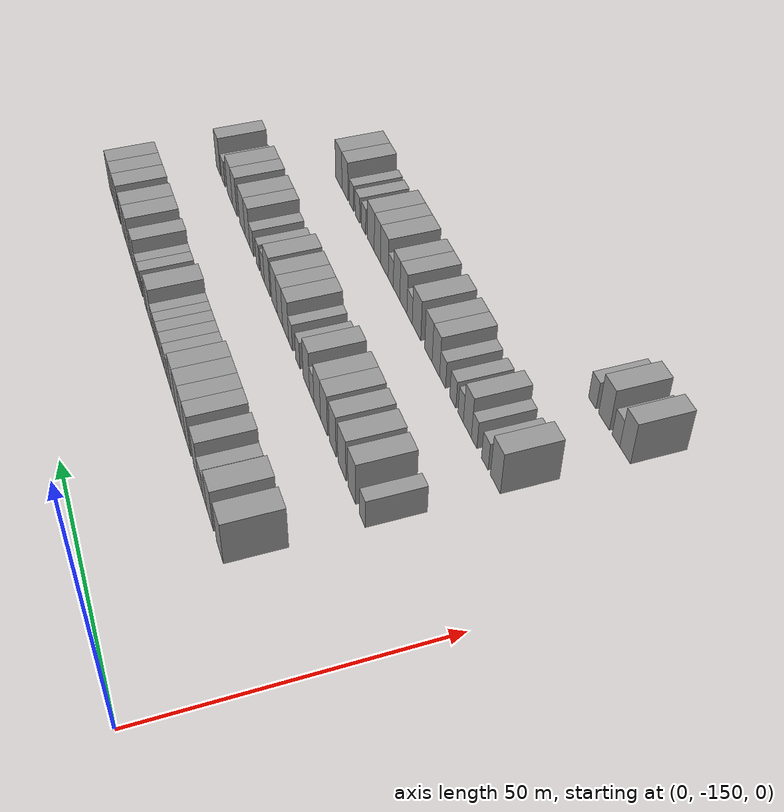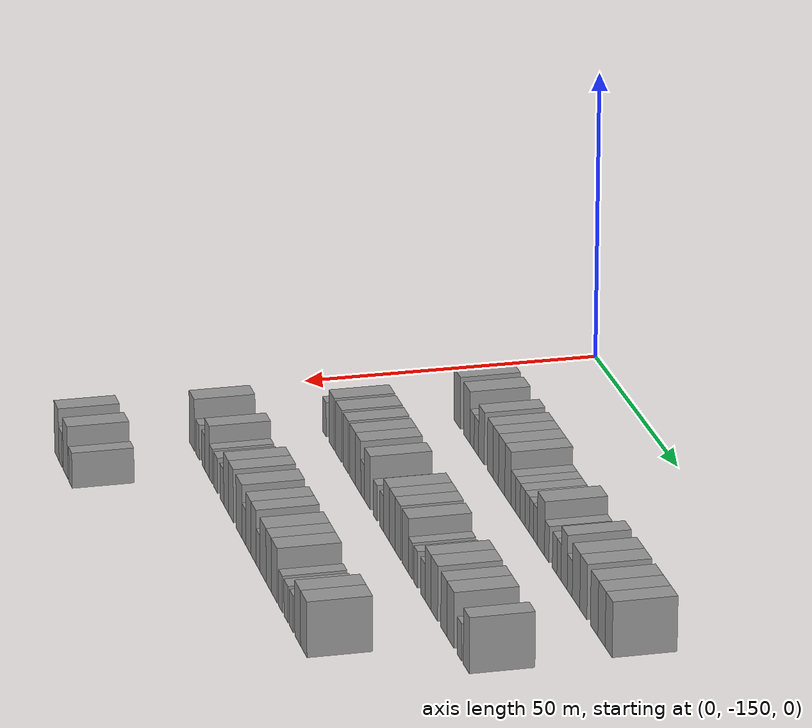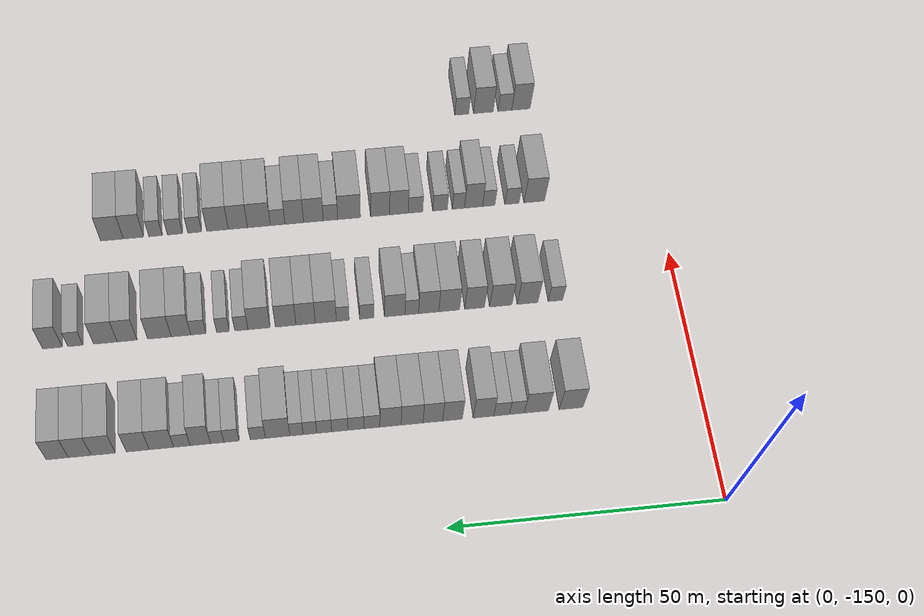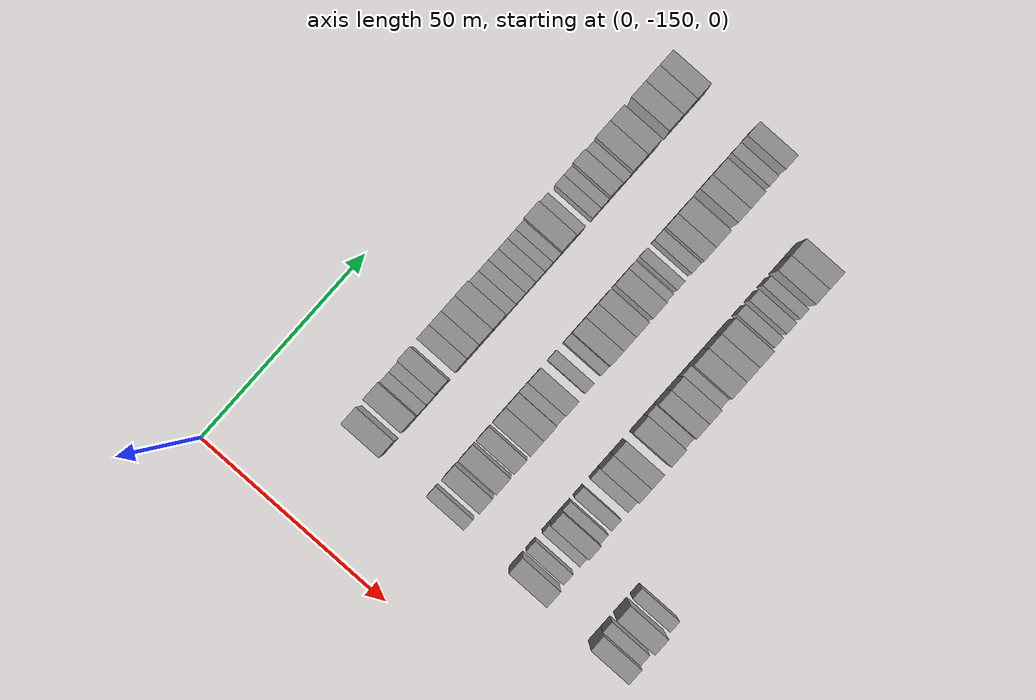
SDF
<sdf version="1.6">
 <world name="default">
  <model name="building_63">
   <static>1</static>
   <pose>25.0000 -125.6364 0 0.000000 0.000000 0.000000</pose>
   <link name="link">
    <pose>0 0 4.50 0 0 0</pose>
    <collision name="collision"><geometry><box><size>10.0000 4.4079 9.0000</size></box></geometry></collision>
    <visual name="visual">
     <cast_shadows>0</cast_shadows>
     <geometry><box><size>10.0000 4.4079 9.0000</size></box></geometry>
     <material>
      <script>
       <uri>model://grey_wall/materials/scripts</uri>
       <uri>model://grey_wall/materials/textures</uri>
       <name>vrc/grey_wall</name>
      </script>
     </material>
    </visual>
   </link>
  </model>
  <model name="building_64">
   <static>1</static>
   <pose>25.0000 -119.1926 0 0.000000 0.000000 0.000000</pose>
   <link name="link">
    <pose>0 0 4.50 0 0 0</pose>
    <collision name="collision"><geometry><box><size>10.0000 4.4797 9.0000</size></box></geometry></collision>
    <visual name="visual">
     <cast_shadows>0</cast_shadows>
     <geometry><box><size>10.0000 4.4797 9.0000</size></box></geometry>
     <material>
      <script>
       <uri>model://grey_wall/materials/scripts</uri>
       <uri>model://grey_wall/materials/textures</uri>
       <name>vrc/grey_wall</name>
      </script>
     </material>
    </visual>
   </link>
  </model>
  <model name="building_65">
   <static>1</static>
   <pose>25.0000 -115.5849 0 0.000000 0.000000 0.000000</pose>
   <link name="link">
    <pose>0 0 3.00 0 0 0</pose>
    <collision name="collision"><geometry><box><size>10.0000 2.7357 6.0000</size></box></geometry></collision>
    <visual name="visual">
     <cast_shadows>0</cast_shadows>
     <geometry><box><size>10.0000 2.7357 6.0000</size></box></geometry>
     <material>
      <script>
       <uri>model://grey_wall/materials/scripts</uri>
       <uri>model://grey_wall/materials/textures</uri>
       <name>vrc/grey_wall</name>
      </script>
     </material>
    </visual>
   </link>
  </model>
  <model name="building_66">
   <static>1</static>
   <pose>25.0000 -112.7701 0 0.000000 0.000000 0.000000</pose>
   <link name="link">
    <pose>0 0 3.00 0 0 0</pose>
    <collision name="collision"><geometry><box><size>10.0000 2.8938 6.0000</size></box></geometry></collision>
    <visual name="visual">
     <cast_shadows>0</cast_shadows>
     <geometry><box><size>10.0000 2.8938 6.0000</size></box></geometry>
     <material>
      <script>
       <uri>model://grey_wall/materials/scripts</uri>
       <uri>model://grey_wall/materials/textures</uri>
       <name>vrc/grey_wall</name>
      </script>
     </material>
    </visual>
   </link>
  </model>
  <model name="building_67">
   <static>1</static>
   <pose>25.0000 -109.4229 0 0.000000 0.000000 0.000000</pose>
   <link name="link">
    <pose>0 0 4.50 0 0 0</pose>
    <collision name="collision"><geometry><box><size>10.0000 3.8006 9.0000</size></box></geometry></collision>
    <visual name="visual">
     <cast_shadows>0</cast_shadows>
     <geometry><box><size>10.0000 3.8006 9.0000</size></box></geometry>
     <material>
      <script>
       <uri>model://grey_wall/materials/scripts</uri>
       <uri>model://grey_wall/materials/textures</uri>
       <name>vrc/grey_wall</name>
      </script>
     </material>
    </visual>
   </link>
  </model>
  <model name="building_68">
   <static>1</static>
   <pose>25.0000 -103.7081 0 0.000000 0.000000 0.000000</pose>
   <link name="link">
    <pose>0 0 4.50 0 0 0</pose>
    <collision name="collision"><geometry><box><size>10.0000 3.6289 9.0000</size></box></geometry></collision>
    <visual name="visual">
     <cast_shadows>0</cast_shadows>
     <geometry><box><size>10.0000 3.6289 9.0000</size></box></geometry>
     <material>
      <script>
       <uri>model://grey_wall/materials/scripts</uri>
       <uri>model://grey_wall/materials/textures</uri>
       <name>vrc/grey_wall</name>
      </script>
     </material>
    </visual>
   </link>
  </model>
  <model name="building_69">
   <static>1</static>
   <pose>25.0000 -100.0918 0 0.000000 0.000000 0.000000</pose>
   <link name="link">
    <pose>0 0 4.50 0 0 0</pose>
    <collision name="collision"><geometry><box><size>10.0000 3.6039 9.0000</size></box></geometry></collision>
    <visual name="visual">
     <cast_shadows>0</cast_shadows>
     <geometry><box><size>10.0000 3.6039 9.0000</size></box></geometry>
     <material>
      <script>
       <uri>model://grey_wall/materials/scripts</uri>
       <uri>model://grey_wall/materials/textures</uri>
       <name>vrc/grey_wall</name>
      </script>
     </material>
    </visual>
   </link>
  </model>
  <model name="building_70">
   <static>1</static>
   <pose>25.0000 -96.2771 0 0.000000 0.000000 0.000000</pose>
   <link name="link">
    <pose>0 0 4.50 0 0 0</pose>
    <collision name="collision"><geometry><box><size>10.0000 4.0254 9.0000</size></box></geometry></collision>
    <visual name="visual">
     <cast_shadows>0</cast_shadows>
     <geometry><box><size>10.0000 4.0254 9.0000</size></box></geometry>
     <material>
      <script>
       <uri>model://grey_wall/materials/scripts</uri>
       <uri>model://grey_wall/materials/textures</uri>
       <name>vrc/grey_wall</name>
      </script>
     </material>
    </visual>
   </link>
  </model>
  <model name="building_71">
   <static>1</static>
   <pose>25.0000 -92.3193 0 0.000000 0.000000 0.000000</pose>
   <link name="link">
    <pose>0 0 4.50 0 0 0</pose>
    <collision name="collision"><geometry><box><size>10.0000 3.8903 9.0000</size></box></geometry></collision>
    <visual name="visual">
     <cast_shadows>0</cast_shadows>
     <geometry><box><size>10.0000 3.8903 9.0000</size></box></geometry>
     <material>
      <script>
       <uri>model://grey_wall/materials/scripts</uri>
       <uri>model://grey_wall/materials/textures</uri>
       <name>vrc/grey_wall</name>
      </script>
     </material>
    </visual>
   </link>
  </model>
  <model name="building_72">
   <static>1</static>
   <pose>25.0000 -88.9104 0 0.000000 0.000000 0.000000</pose>
   <link name="link">
    <pose>0 0 3.00 0 0 0</pose>
    <collision name="collision"><geometry><box><size>10.0000 2.9274 6.0000</size></box></geometry></collision>
    <visual name="visual">
     <cast_shadows>0</cast_shadows>
     <geometry><box><size>10.0000 2.9274 6.0000</size></box></geometry>
     <material>
      <script>
       <uri>model://grey_wall/materials/scripts</uri>
       <uri>model://grey_wall/materials/textures</uri>
       <name>vrc/grey_wall</name>
      </script>
     </material>
    </visual>
   </link>
  </model>
  <model name="building_73">
   <static>1</static>
   <pose>25.0000 -86.0013 0 0.000000 0.000000 0.000000</pose>
   <link name="link">
    <pose>0 0 3.00 0 0 0</pose>
    <collision name="collision"><geometry><box><size>10.0000 2.8908 6.0000</size></box></geometry></collision>
    <visual name="visual">
     <cast_shadows>0</cast_shadows>
     <geometry><box><size>10.0000 2.8908 6.0000</size></box></geometry>
     <material>
      <script>
       <uri>model://grey_wall/materials/scripts</uri>
       <uri>model://grey_wall/materials/textures</uri>
       <name>vrc/grey_wall</name>
      </script>
     </material>
    </visual>
   </link>
  </model>
  <model name="building_74">
   <static>1</static>
   <pose>25.0000 -83.0703 0 0.000000 0.000000 0.000000</pose>
   <link name="link">
    <pose>0 0 3.00 0 0 0</pose>
    <collision name="collision"><geometry><box><size>10.0000 2.9712 6.0000</size></box></geometry></collision>
    <visual name="visual">
     <cast_shadows>0</cast_shadows>
     <geometry><box><size>10.0000 2.9712 6.0000</size></box></geometry>
     <material>
      <script>
       <uri>model://grey_wall/materials/scripts</uri>
       <uri>model://grey_wall/materials/textures</uri>
       <name>vrc/grey_wall</name>
      </script>
     </material>
    </visual>
   </link>
  </model>
  <model name="building_75">
   <static>1</static>
   <pose>25.0000 -80.2121 0 0.000000 0.000000 0.000000</pose>
   <link name="link">
    <pose>0 0 3.00 0 0 0</pose>
    <collision name="collision"><geometry><box><size>10.0000 2.7452 6.0000</size></box></geometry></collision>
    <visual name="visual">
     <cast_shadows>0</cast_shadows>
     <geometry><box><size>10.0000 2.7452 6.0000</size></box></geometry>
     <material>
      <script>
       <uri>model://grey_wall/materials/scripts</uri>
       <uri>model://grey_wall/materials/textures</uri>
       <name>vrc/grey_wall</name>
      </script>
     </material>
    </visual>
   </link>
  </model>
  <model name="building_76">
   <static>1</static>
   <pose>25.0000 -77.6186 0 0.000000 0.000000 0.000000</pose>
   <link name="link">
    <pose>0 0 3.00 0 0 0</pose>
    <collision name="collision"><geometry><box><size>10.0000 2.4418 6.0000</size></box></geometry></collision>
    <visual name="visual">
     <cast_shadows>0</cast_shadows>
     <geometry><box><size>10.0000 2.4418 6.0000</size></box></geometry>
     <material>
      <script>
       <uri>model://grey_wall/materials/scripts</uri>
       <uri>model://grey_wall/materials/textures</uri>
       <name>vrc/grey_wall</name>
      </script>
     </material>
    </visual>
   </link>
  </model>
  <model name="building_77">
   <static>1</static>
   <pose>25.0000 -75.1793 0 0.000000 0.000000 0.000000</pose>
   <link name="link">
    <pose>0 0 3.00 0 0 0</pose>
    <collision name="collision"><geometry><box><size>10.0000 2.4368 6.0000</size></box></geometry></collision>
    <visual name="visual">
     <cast_shadows>0</cast_shadows>
     <geometry><box><size>10.0000 2.4368 6.0000</size></box></geometry>
     <material>
      <script>
       <uri>model://grey_wall/materials/scripts</uri>
       <uri>model://grey_wall/materials/textures</uri>
       <name>vrc/grey_wall</name>
      </script>
     </material>
    </visual>
   </link>
  </model>
  <model name="building_78">
   <static>1</static>
   <pose>25.0000 -71.7405 0 0.000000 0.000000 0.000000</pose>
   <link name="link">
    <pose>0 0 4.50 0 0 0</pose>
    <collision name="collision"><geometry><box><size>10.0000 4.4407 9.0000</size></box></geometry></collision>
    <visual name="visual">
     <cast_shadows>0</cast_shadows>
     <geometry><box><size>10.0000 4.4407 9.0000</size></box></geometry>
     <material>
      <script>
       <uri>model://grey_wall/materials/scripts</uri>
       <uri>model://grey_wall/materials/textures</uri>
       <name>vrc/grey_wall</name>
      </script>
     </material>
    </visual>
   </link>
  </model>
  <model name="building_79">
   <static>1</static>
   <pose>25.0000 -68.1407 0 0.000000 0.000000 0.000000</pose>
   <link name="link">
    <pose>0 0 3.00 0 0 0</pose>
    <collision name="collision"><geometry><box><size>10.0000 2.7589 6.0000</size></box></geometry></collision>
    <visual name="visual">
     <cast_shadows>0</cast_shadows>
     <geometry><box><size>10.0000 2.7589 6.0000</size></box></geometry>
     <material>
      <script>
       <uri>model://grey_wall/materials/scripts</uri>
       <uri>model://grey_wall/materials/textures</uri>
       <name>vrc/grey_wall</name>
      </script>
     </material>
    </visual>
   </link>
  </model>
  <model name="building_80">
   <static>1</static>
   <pose>25.0000 -63.3926 0 0.000000 0.000000 0.000000</pose>
   <link name="link">
    <pose>0 0 3.00 0 0 0</pose>
    <collision name="collision"><geometry><box><size>10.0000 2.7373 6.0000</size></box></geometry></collision>
    <visual name="visual">
     <cast_shadows>0</cast_shadows>
     <geometry><box><size>10.0000 2.7373 6.0000</size></box></geometry>
     <material>
      <script>
       <uri>model://grey_wall/materials/scripts</uri>
       <uri>model://grey_wall/materials/textures</uri>
       <name>vrc/grey_wall</name>
      </script>
     </material>
    </visual>
   </link>
  </model>
  <model name="building_81">
   <static>1</static>
   <pose>25.0000 -60.8012 0 0.000000 0.000000 0.000000</pose>
   <link name="link">
    <pose>0 0 3.00 0 0 0</pose>
    <collision name="collision"><geometry><box><size>10.0000 2.4455 6.0000</size></box></geometry></collision>
    <visual name="visual">
     <cast_shadows>0</cast_shadows>
     <geometry><box><size>10.0000 2.4455 6.0000</size></box></geometry>
     <material>
      <script>
       <uri>model://grey_wall/materials/scripts</uri>
       <uri>model://grey_wall/materials/textures</uri>
       <name>vrc/grey_wall</name>
      </script>
     </material>
    </visual>
   </link>
  </model>
  <model name="building_82">
   <static>1</static>
   <pose>25.0000 -57.7466 0 0.000000 0.000000 0.000000</pose>
   <link name="link">
    <pose>0 0 4.50 0 0 0</pose>
    <collision name="collision"><geometry><box><size>10.0000 3.6637 9.0000</size></box></geometry></collision>
    <visual name="visual">
     <cast_shadows>0</cast_shadows>
     <geometry><box><size>10.0000 3.6637 9.0000</size></box></geometry>
     <material>
      <script>
       <uri>model://grey_wall/materials/scripts</uri>
       <uri>model://grey_wall/materials/textures</uri>
       <name>vrc/grey_wall</name>
      </script>
     </material>
    </visual>
   </link>
  </model>
  <model name="building_83">
   <static>1</static>
   <pose>25.0000 -54.4215 0 0.000000 0.000000 0.000000</pose>
   <link name="link">
    <pose>0 0 3.00 0 0 0</pose>
    <collision name="collision"><geometry><box><size>10.0000 2.9864 6.0000</size></box></geometry></collision>
    <visual name="visual">
     <cast_shadows>0</cast_shadows>
     <geometry><box><size>10.0000 2.9864 6.0000</size></box></geometry>
     <material>
      <script>
       <uri>model://grey_wall/materials/scripts</uri>
       <uri>model://grey_wall/materials/textures</uri>
       <name>vrc/grey_wall</name>
      </script>
     </material>
    </visual>
   </link>
  </model>
  <model name="building_84">
   <static>1</static>
   <pose>25.0000 -50.7210 0 0.000000 0.000000 0.000000</pose>
   <link name="link">
    <pose>0 0 4.50 0 0 0</pose>
    <collision name="collision"><geometry><box><size>10.0000 4.4145 9.0000</size></box></geometry></collision>
    <visual name="visual">
     <cast_shadows>0</cast_shadows>
     <geometry><box><size>10.0000 4.4145 9.0000</size></box></geometry>
     <material>
      <script>
       <uri>model://grey_wall/materials/scripts</uri>
       <uri>model://grey_wall/materials/textures</uri>
       <name>vrc/grey_wall</name>
      </script>
     </material>
    </visual>
   </link>
  </model>
  <model name="building_85">
   <static>1</static>
   <pose>25.0000 -46.4467 0 0.000000 0.000000 0.000000</pose>
   <link name="link">
    <pose>0 0 4.50 0 0 0</pose>
    <collision name="collision"><geometry><box><size>10.0000 4.1342 9.0000</size></box></geometry></collision>
    <visual name="visual">
     <cast_shadows>0</cast_shadows>
     <geometry><box><size>10.0000 4.1342 9.0000</size></box></geometry>
     <material>
      <script>
       <uri>model://grey_wall/materials/scripts</uri>
       <uri>model://grey_wall/materials/textures</uri>
       <name>vrc/grey_wall</name>
      </script>
     </material>
    </visual>
   </link>
  </model>
  <model name="building_86">
   <static>1</static>
   <pose>25.0000 -40.2250 0 0.000000 0.000000 0.000000</pose>
   <link name="link">
    <pose>0 0 4.50 0 0 0</pose>
    <collision name="collision"><geometry><box><size>10.0000 4.3090 9.0000</size></box></geometry></collision>
    <visual name="visual">
     <cast_shadows>0</cast_shadows>
     <geometry><box><size>10.0000 4.3090 9.0000</size></box></geometry>
     <material>
      <script>
       <uri>model://grey_wall/materials/scripts</uri>
       <uri>model://grey_wall/materials/textures</uri>
       <name>vrc/grey_wall</name>
      </script>
     </material>
    </visual>
   </link>
  </model>
  <model name="building_87">
   <static>1</static>
   <pose>25.0000 -36.0208 0 0.000000 0.000000 0.000000</pose>
   <link name="link">
    <pose>0 0 4.50 0 0 0</pose>
    <collision name="collision"><geometry><box><size>10.0000 4.0994 9.0000</size></box></geometry></collision>
    <visual name="visual">
     <cast_shadows>0</cast_shadows>
     <geometry><box><size>10.0000 4.0994 9.0000</size></box></geometry>
     <material>
      <script>
       <uri>model://grey_wall/materials/scripts</uri>
       <uri>model://grey_wall/materials/textures</uri>
       <name>vrc/grey_wall</name>
      </script>
     </material>
    </visual>
   </link>
  </model>
  <model name="building_88">
   <static>1</static>
   <pose>25.0000 -31.9930 0 0.000000 0.000000 0.000000</pose>
   <link name="link">
    <pose>0 0 4.50 0 0 0</pose>
    <collision name="collision"><geometry><box><size>10.0000 3.9563 9.0000</size></box></geometry></collision>
    <visual name="visual">
     <cast_shadows>0</cast_shadows>
     <geometry><box><size>10.0000 3.9563 9.0000</size></box></geometry>
     <material>
      <script>
       <uri>model://grey_wall/materials/scripts</uri>
       <uri>model://grey_wall/materials/textures</uri>
       <name>vrc/grey_wall</name>
      </script>
     </material>
    </visual>
   </link>
  </model>
  <model name="building_255">
   <static>1</static>
   <pose>47.0000 -126.4017 0 0.000000 0.000000 0.000000</pose>
   <link name="link">
    <pose>0 0 3.00 0 0 0</pose>
    <collision name="collision"><geometry><box><size>10.0000 2.7861 6.0000</size></box></geometry></collision>
    <visual name="visual">
     <cast_shadows>0</cast_shadows>
     <geometry><box><size>10.0000 2.7861 6.0000</size></box></geometry>
     <material>
      <script>
       <uri>model://grey_wall/materials/scripts</uri>
       <uri>model://grey_wall/materials/textures</uri>
       <name>vrc/grey_wall</name>
      </script>
     </material>
    </visual>
   </link>
  </model>
  <model name="building_256">
   <static>1</static>
   <pose>47.0000 -121.0189 0 0.000000 0.000000 0.000000</pose>
   <link name="link">
    <pose>0 0 4.50 0 0 0</pose>
    <collision name="collision"><geometry><box><size>10.0000 3.9794 9.0000</size></box></geometry></collision>
    <visual name="visual">
     <cast_shadows>0</cast_shadows>
     <geometry><box><size>10.0000 3.9794 9.0000</size></box></geometry>
     <material>
      <script>
       <uri>model://grey_wall/materials/scripts</uri>
       <uri>model://grey_wall/materials/textures</uri>
       <name>vrc/grey_wall</name>
      </script>
     </material>
    </visual>
   </link>
  </model>
  <model name="building_257">
   <static>1</static>
   <pose>47.0000 -115.8772 0 0.000000 0.000000 0.000000</pose>
   <link name="link">
    <pose>0 0 4.50 0 0 0</pose>
    <collision name="collision"><geometry><box><size>10.0000 4.3039 9.0000</size></box></geometry></collision>
    <visual name="visual">
     <cast_shadows>0</cast_shadows>
     <geometry><box><size>10.0000 4.3039 9.0000</size></box></geometry>
     <material>
      <script>
       <uri>model://grey_wall/materials/scripts</uri>
       <uri>model://grey_wall/materials/textures</uri>
       <name>vrc/grey_wall</name>
      </script>
     </material>
    </visual>
   </link>
  </model>
  <model name="building_258">
   <static>1</static>
   <pose>47.0000 -110.8382 0 0.000000 0.000000 0.000000</pose>
   <link name="link">
    <pose>0 0 4.50 0 0 0</pose>
    <collision name="collision"><geometry><box><size>10.0000 3.7742 9.0000</size></box></geometry></collision>
    <visual name="visual">
     <cast_shadows>0</cast_shadows>
     <geometry><box><size>10.0000 3.7742 9.0000</size></box></geometry>
     <material>
      <script>
       <uri>model://grey_wall/materials/scripts</uri>
       <uri>model://grey_wall/materials/textures</uri>
       <name>vrc/grey_wall</name>
      </script>
     </material>
    </visual>
   </link>
  </model>
  <model name="building_259">
   <static>1</static>
   <pose>47.0000 -105.9641 0 0.000000 0.000000 0.000000</pose>
   <link name="link">
    <pose>0 0 4.50 0 0 0</pose>
    <collision name="collision"><geometry><box><size>10.0000 3.9741 9.0000</size></box></geometry></collision>
    <visual name="visual">
     <cast_shadows>0</cast_shadows>
     <geometry><box><size>10.0000 3.9741 9.0000</size></box></geometry>
     <material>
      <script>
       <uri>model://grey_wall/materials/scripts</uri>
       <uri>model://grey_wall/materials/textures</uri>
       <name>vrc/grey_wall</name>
      </script>
     </material>
    </visual>
   </link>
  </model>
  <model name="building_260">
   <static>1</static>
   <pose>47.0000 -102.0428 0 0.000000 0.000000 0.000000</pose>
   <link name="link">
    <pose>0 0 4.50 0 0 0</pose>
    <collision name="collision"><geometry><box><size>10.0000 3.8685 9.0000</size></box></geometry></collision>
    <visual name="visual">
     <cast_shadows>0</cast_shadows>
     <geometry><box><size>10.0000 3.8685 9.0000</size></box></geometry>
     <material>
      <script>
       <uri>model://grey_wall/materials/scripts</uri>
       <uri>model://grey_wall/materials/textures</uri>
       <name>vrc/grey_wall</name>
      </script>
     </material>
    </visual>
   </link>
  </model>
  <model name="building_261">
   <static>1</static>
   <pose>47.0000 -98.8056 0 0.000000 0.000000 0.000000</pose>
   <link name="link">
    <pose>0 0 3.00 0 0 0</pose>
    <collision name="collision"><geometry><box><size>10.0000 2.6057 6.0000</size></box></geometry></collision>
    <visual name="visual">
     <cast_shadows>0</cast_shadows>
     <geometry><box><size>10.0000 2.6057 6.0000</size></box></geometry>
     <material>
      <script>
       <uri>model://grey_wall/materials/scripts</uri>
       <uri>model://grey_wall/materials/textures</uri>
       <name>vrc/grey_wall</name>
      </script>
     </material>
    </visual>
   </link>
  </model>
  <model name="building_262">
   <static>1</static>
   <pose>47.0000 -95.5559 0 0.000000 0.000000 0.000000</pose>
   <link name="link">
    <pose>0 0 4.50 0 0 0</pose>
    <collision name="collision"><geometry><box><size>10.0000 3.8938 9.0000</size></box></geometry></collision>
    <visual name="visual">
     <cast_shadows>0</cast_shadows>
     <geometry><box><size>10.0000 3.8938 9.0000</size></box></geometry>
     <material>
      <script>
       <uri>model://grey_wall/materials/scripts</uri>
       <uri>model://grey_wall/materials/textures</uri>
       <name>vrc/grey_wall</name>
      </script>
     </material>
    </visual>
   </link>
  </model>
  <model name="building_263">
   <static>1</static>
   <pose>47.0000 -90.2427 0 0.000000 0.000000 0.000000</pose>
   <link name="link">
    <pose>0 0 3.00 0 0 0</pose>
    <collision name="collision"><geometry><box><size>10.0000 2.7325 6.0000</size></box></geometry></collision>
    <visual name="visual">
     <cast_shadows>0</cast_shadows>
     <geometry><box><size>10.0000 2.7325 6.0000</size></box></geometry>
     <material>
      <script>
       <uri>model://grey_wall/materials/scripts</uri>
       <uri>model://grey_wall/materials/textures</uri>
       <name>vrc/grey_wall</name>
      </script>
     </material>
    </visual>
   </link>
  </model>
  <model name="building_264">
   <static>1</static>
   <pose>47.0000 -85.6535 0 0.000000 0.000000 0.000000</pose>
   <link name="link">
    <pose>0 0 3.00 0 0 0</pose>
    <collision name="collision"><geometry><box><size>10.0000 2.4460 6.0000</size></box></geometry></collision>
    <visual name="visual">
     <cast_shadows>0</cast_shadows>
     <geometry><box><size>10.0000 2.4460 6.0000</size></box></geometry>
     <material>
      <script>
       <uri>model://grey_wall/materials/scripts</uri>
       <uri>model://grey_wall/materials/textures</uri>
       <name>vrc/grey_wall</name>
      </script>
     </material>
    </visual>
   </link>
  </model>
  <model name="building_265">
   <static>1</static>
   <pose>47.0000 -82.4280 0 0.000000 0.000000 0.000000</pose>
   <link name="link">
    <pose>0 0 4.50 0 0 0</pose>
    <collision name="collision"><geometry><box><size>10.0000 4.0050 9.0000</size></box></geometry></collision>
    <visual name="visual">
     <cast_shadows>0</cast_shadows>
     <geometry><box><size>10.0000 4.0050 9.0000</size></box></geometry>
     <material>
      <script>
       <uri>model://grey_wall/materials/scripts</uri>
       <uri>model://grey_wall/materials/textures</uri>
       <name>vrc/grey_wall</name>
      </script>
     </material>
    </visual>
   </link>
  </model>
  <model name="building_266">
   <static>1</static>
   <pose>47.0000 -78.6016 0 0.000000 0.000000 0.000000</pose>
   <link name="link">
    <pose>0 0 4.50 0 0 0</pose>
    <collision name="collision"><geometry><box><size>10.0000 3.6480 9.0000</size></box></geometry></collision>
    <visual name="visual">
     <cast_shadows>0</cast_shadows>
     <geometry><box><size>10.0000 3.6480 9.0000</size></box></geometry>
     <material>
      <script>
       <uri>model://grey_wall/materials/scripts</uri>
       <uri>model://grey_wall/materials/textures</uri>
       <name>vrc/grey_wall</name>
      </script>
     </material>
    </visual>
   </link>
  </model>
  <model name="building_267">
   <static>1</static>
   <pose>47.0000 -74.8322 0 0.000000 0.000000 0.000000</pose>
   <link name="link">
    <pose>0 0 4.50 0 0 0</pose>
    <collision name="collision"><geometry><box><size>10.0000 3.8908 9.0000</size></box></geometry></collision>
    <visual name="visual">
     <cast_shadows>0</cast_shadows>
     <geometry><box><size>10.0000 3.8908 9.0000</size></box></geometry>
     <material>
      <script>
       <uri>model://grey_wall/materials/scripts</uri>
       <uri>model://grey_wall/materials/textures</uri>
       <name>vrc/grey_wall</name>
      </script>
     </material>
    </visual>
   </link>
  </model>
  <model name="building_268">
   <static>1</static>
   <pose>47.0000 -69.8015 0 0.000000 0.000000 0.000000</pose>
   <link name="link">
    <pose>0 0 4.50 0 0 0</pose>
    <collision name="collision"><geometry><box><size>10.0000 4.1706 9.0000</size></box></geometry></collision>
    <visual name="visual">
     <cast_shadows>0</cast_shadows>
     <geometry><box><size>10.0000 4.1706 9.0000</size></box></geometry>
     <material>
      <script>
       <uri>model://grey_wall/materials/scripts</uri>
       <uri>model://grey_wall/materials/textures</uri>
       <name>vrc/grey_wall</name>
      </script>
     </material>
    </visual>
   </link>
  </model>
  <model name="building_269">
   <static>1</static>
   <pose>47.0000 -66.4611 0 0.000000 0.000000 0.000000</pose>
   <link name="link">
    <pose>0 0 3.00 0 0 0</pose>
    <collision name="collision"><geometry><box><size>10.0000 2.5102 6.0000</size></box></geometry></collision>
    <visual name="visual">
     <cast_shadows>0</cast_shadows>
     <geometry><box><size>10.0000 2.5102 6.0000</size></box></geometry>
     <material>
      <script>
       <uri>model://grey_wall/materials/scripts</uri>
       <uri>model://grey_wall/materials/textures</uri>
       <name>vrc/grey_wall</name>
      </script>
     </material>
    </visual>
   </link>
  </model>
  <model name="building_270">
   <static>1</static>
   <pose>47.0000 -63.0001 0 0.000000 0.000000 0.000000</pose>
   <link name="link">
    <pose>0 0 3.00 0 0 0</pose>
    <collision name="collision"><geometry><box><size>10.0000 2.4117 6.0000</size></box></geometry></collision>
    <visual name="visual">
     <cast_shadows>0</cast_shadows>
     <geometry><box><size>10.0000 2.4117 6.0000</size></box></geometry>
     <material>
      <script>
       <uri>model://grey_wall/materials/scripts</uri>
       <uri>model://grey_wall/materials/textures</uri>
       <name>vrc/grey_wall</name>
      </script>
     </material>
    </visual>
   </link>
  </model>
  <model name="building_271">
   <static>1</static>
   <pose>47.0000 -58.3613 0 0.000000 0.000000 0.000000</pose>
   <link name="link">
    <pose>0 0 3.00 0 0 0</pose>
    <collision name="collision"><geometry><box><size>10.0000 2.8659 6.0000</size></box></geometry></collision>
    <visual name="visual">
     <cast_shadows>0</cast_shadows>
     <geometry><box><size>10.0000 2.8659 6.0000</size></box></geometry>
     <material>
      <script>
       <uri>model://grey_wall/materials/scripts</uri>
       <uri>model://grey_wall/materials/textures</uri>
       <name>vrc/grey_wall</name>
      </script>
     </material>
    </visual>
   </link>
  </model>
  <model name="building_272">
   <static>1</static>
   <pose>47.0000 -55.0954 0 0.000000 0.000000 0.000000</pose>
   <link name="link">
    <pose>0 0 4.50 0 0 0</pose>
    <collision name="collision"><geometry><box><size>10.0000 3.6658 9.0000</size></box></geometry></collision>
    <visual name="visual">
     <cast_shadows>0</cast_shadows>
     <geometry><box><size>10.0000 3.6658 9.0000</size></box></geometry>
     <material>
      <script>
       <uri>model://grey_wall/materials/scripts</uri>
       <uri>model://grey_wall/materials/textures</uri>
       <name>vrc/grey_wall</name>
      </script>
     </material>
    </visual>
   </link>
  </model>
  <model name="building_273">
   <static>1</static>
   <pose>47.0000 -51.0389 0 0.000000 0.000000 0.000000</pose>
   <link name="link">
    <pose>0 0 4.50 0 0 0</pose>
    <collision name="collision"><geometry><box><size>10.0000 4.4472 9.0000</size></box></geometry></collision>
    <visual name="visual">
     <cast_shadows>0</cast_shadows>
     <geometry><box><size>10.0000 4.4472 9.0000</size></box></geometry>
     <material>
      <script>
       <uri>model://grey_wall/materials/scripts</uri>
       <uri>model://grey_wall/materials/textures</uri>
       <name>vrc/grey_wall</name>
      </script>
     </material>
    </visual>
   </link>
  </model>
  <model name="building_274">
   <static>1</static>
   <pose>47.0000 -44.9595 0 0.000000 0.000000 0.000000</pose>
   <link name="link">
    <pose>0 0 4.50 0 0 0</pose>
    <collision name="collision"><geometry><box><size>10.0000 3.7117 9.0000</size></box></geometry></collision>
    <visual name="visual">
     <cast_shadows>0</cast_shadows>
     <geometry><box><size>10.0000 3.7117 9.0000</size></box></geometry>
     <material>
      <script>
       <uri>model://grey_wall/materials/scripts</uri>
       <uri>model://grey_wall/materials/textures</uri>
       <name>vrc/grey_wall</name>
      </script>
     </material>
    </visual>
   </link>
  </model>
  <model name="building_275">
   <static>1</static>
   <pose>47.0000 -40.9039 0 0.000000 0.000000 0.000000</pose>
   <link name="link">
    <pose>0 0 4.50 0 0 0</pose>
    <collision name="collision"><geometry><box><size>10.0000 4.3994 9.0000</size></box></geometry></collision>
    <visual name="visual">
     <cast_shadows>0</cast_shadows>
     <geometry><box><size>10.0000 4.3994 9.0000</size></box></geometry>
     <material>
      <script>
       <uri>model://grey_wall/materials/scripts</uri>
       <uri>model://grey_wall/materials/textures</uri>
       <name>vrc/grey_wall</name>
      </script>
     </material>
    </visual>
   </link>
  </model>
  <model name="building_276">
   <static>1</static>
   <pose>47.0000 -35.2857 0 0.000000 0.000000 0.000000</pose>
   <link name="link">
    <pose>0 0 3.00 0 0 0</pose>
    <collision name="collision"><geometry><box><size>10.0000 2.8371 6.0000</size></box></geometry></collision>
    <visual name="visual">
     <cast_shadows>0</cast_shadows>
     <geometry><box><size>10.0000 2.8371 6.0000</size></box></geometry>
     <material>
      <script>
       <uri>model://grey_wall/materials/scripts</uri>
       <uri>model://grey_wall/materials/textures</uri>
       <name>vrc/grey_wall</name>
      </script>
     </material>
    </visual>
   </link>
  </model>
  <model name="building_277">
   <static>1</static>
   <pose>47.0000 -31.0288 0 0.000000 0.000000 0.000000</pose>
   <link name="link">
    <pose>0 0 4.50 0 0 0</pose>
    <collision name="collision"><geometry><box><size>10.0000 3.6767 9.0000</size></box></geometry></collision>
    <visual name="visual">
     <cast_shadows>0</cast_shadows>
     <geometry><box><size>10.0000 3.6767 9.0000</size></box></geometry>
     <material>
      <script>
       <uri>model://grey_wall/materials/scripts</uri>
       <uri>model://grey_wall/materials/textures</uri>
       <name>vrc/grey_wall</name>
      </script>
     </material>
    </visual>
   </link>
  </model>
  <model name="building_434">
   <static>1</static>
   <pose>69.0000 -125.8251 0 0.000000 0.000000 0.000000</pose>
   <link name="link">
    <pose>0 0 4.50 0 0 0</pose>
    <collision name="collision"><geometry><box><size>10.0000 4.1226 9.0000</size></box></geometry></collision>
    <visual name="visual">
     <cast_shadows>0</cast_shadows>
     <geometry><box><size>10.0000 4.1226 9.0000</size></box></geometry>
     <material>
      <script>
       <uri>model://grey_wall/materials/scripts</uri>
       <uri>model://grey_wall/materials/textures</uri>
       <name>vrc/grey_wall</name>
      </script>
     </material>
    </visual>
   </link>
  </model>
  <model name="building_435">
   <static>1</static>
   <pose>69.0000 -121.3529 0 0.000000 0.000000 0.000000</pose>
   <link name="link">
    <pose>0 0 3.00 0 0 0</pose>
    <collision name="collision"><geometry><box><size>10.0000 2.8217 6.0000</size></box></geometry></collision>
    <visual name="visual">
     <cast_shadows>0</cast_shadows>
     <geometry><box><size>10.0000 2.8217 6.0000</size></box></geometry>
     <material>
      <script>
       <uri>model://grey_wall/materials/scripts</uri>
       <uri>model://grey_wall/materials/textures</uri>
       <name>vrc/grey_wall</name>
      </script>
     </material>
    </visual>
   </link>
  </model>
  <model name="building_436">
   <static>1</static>
   <pose>69.0000 -116.7159 0 0.000000 0.000000 0.000000</pose>
   <link name="link">
    <pose>0 0 3.00 0 0 0</pose>
    <collision name="collision"><geometry><box><size>10.0000 2.4524 6.0000</size></box></geometry></collision>
    <visual name="visual">
     <cast_shadows>0</cast_shadows>
     <geometry><box><size>10.0000 2.4524 6.0000</size></box></geometry>
     <material>
      <script>
       <uri>model://grey_wall/materials/scripts</uri>
       <uri>model://grey_wall/materials/textures</uri>
       <name>vrc/grey_wall</name>
      </script>
     </material>
    </visual>
   </link>
  </model>
  <model name="building_437">
   <static>1</static>
   <pose>69.0000 -113.6880 0 0.000000 0.000000 0.000000</pose>
   <link name="link">
    <pose>0 0 4.50 0 0 0</pose>
    <collision name="collision"><geometry><box><size>10.0000 3.6035 9.0000</size></box></geometry></collision>
    <visual name="visual">
     <cast_shadows>0</cast_shadows>
     <geometry><box><size>10.0000 3.6035 9.0000</size></box></geometry>
     <material>
      <script>
       <uri>model://grey_wall/materials/scripts</uri>
       <uri>model://grey_wall/materials/textures</uri>
       <name>vrc/grey_wall</name>
      </script>
     </material>
    </visual>
   </link>
  </model>
  <model name="building_438">
   <static>1</static>
   <pose>69.0000 -110.6738 0 0.000000 0.000000 0.000000</pose>
   <link name="link">
    <pose>0 0 3.00 0 0 0</pose>
    <collision name="collision"><geometry><box><size>10.0000 2.4248 6.0000</size></box></geometry></collision>
    <visual name="visual">
     <cast_shadows>0</cast_shadows>
     <geometry><box><size>10.0000 2.4248 6.0000</size></box></geometry>
     <material>
      <script>
       <uri>model://grey_wall/materials/scripts</uri>
       <uri>model://grey_wall/materials/textures</uri>
       <name>vrc/grey_wall</name>
      </script>
     </material>
    </visual>
   </link>
  </model>
  <model name="building_439">
   <static>1</static>
   <pose>69.0000 -107.0126 0 0.000000 0.000000 0.000000</pose>
   <link name="link">
    <pose>0 0 3.00 0 0 0</pose>
    <collision name="collision"><geometry><box><size>10.0000 2.8976 6.0000</size></box></geometry></collision>
    <visual name="visual">
     <cast_shadows>0</cast_shadows>
     <geometry><box><size>10.0000 2.8976 6.0000</size></box></geometry>
     <material>
      <script>
       <uri>model://grey_wall/materials/scripts</uri>
       <uri>model://grey_wall/materials/textures</uri>
       <name>vrc/grey_wall</name>
      </script>
     </material>
    </visual>
   </link>
  </model>
  <model name="building_440">
   <static>1</static>
   <pose>69.0000 -102.1213 0 0.000000 0.000000 0.000000</pose>
   <link name="link">
    <pose>0 0 3.00 0 0 0</pose>
    <collision name="collision"><geometry><box><size>10.0000 2.8850 6.0000</size></box></geometry></collision>
    <visual name="visual">
     <cast_shadows>0</cast_shadows>
     <geometry><box><size>10.0000 2.8850 6.0000</size></box></geometry>
     <material>
      <script>
       <uri>model://grey_wall/materials/scripts</uri>
       <uri>model://grey_wall/materials/textures</uri>
       <name>vrc/grey_wall</name>
      </script>
     </material>
    </visual>
   </link>
  </model>
  <model name="building_441">
   <static>1</static>
   <pose>69.0000 -98.8300 0 0.000000 0.000000 0.000000</pose>
   <link name="link">
    <pose>0 0 4.50 0 0 0</pose>
    <collision name="collision"><geometry><box><size>10.0000 3.6975 9.0000</size></box></geometry></collision>
    <visual name="visual">
     <cast_shadows>0</cast_shadows>
     <geometry><box><size>10.0000 3.6975 9.0000</size></box></geometry>
     <material>
      <script>
       <uri>model://grey_wall/materials/scripts</uri>
       <uri>model://grey_wall/materials/textures</uri>
       <name>vrc/grey_wall</name>
      </script>
     </material>
    </visual>
   </link>
  </model>
  <model name="building_442">
   <static>1</static>
   <pose>69.0000 -95.0983 0 0.000000 0.000000 0.000000</pose>
   <link name="link">
    <pose>0 0 4.50 0 0 0</pose>
    <collision name="collision"><geometry><box><size>10.0000 3.7658 9.0000</size></box></geometry></collision>
    <visual name="visual">
     <cast_shadows>0</cast_shadows>
     <geometry><box><size>10.0000 3.7658 9.0000</size></box></geometry>
     <material>
      <script>
       <uri>model://grey_wall/materials/scripts</uri>
       <uri>model://grey_wall/materials/textures</uri>
       <name>vrc/grey_wall</name>
      </script>
     </material>
    </visual>
   </link>
  </model>
  <model name="building_443">
   <static>1</static>
   <pose>69.0000 -88.9669 0 0.000000 0.000000 0.000000</pose>
   <link name="link">
    <pose>0 0 4.50 0 0 0</pose>
    <collision name="collision"><geometry><box><size>10.0000 4.4970 9.0000</size></box></geometry></collision>
    <visual name="visual">
     <cast_shadows>0</cast_shadows>
     <geometry><box><size>10.0000 4.4970 9.0000</size></box></geometry>
     <material>
      <script>
       <uri>model://grey_wall/materials/scripts</uri>
       <uri>model://grey_wall/materials/textures</uri>
       <name>vrc/grey_wall</name>
      </script>
     </material>
    </visual>
   </link>
  </model>
  <model name="building_444">
   <static>1</static>
   <pose>69.0000 -85.2933 0 0.000000 0.000000 0.000000</pose>
   <link name="link">
    <pose>0 0 3.00 0 0 0</pose>
    <collision name="collision"><geometry><box><size>10.0000 2.8503 6.0000</size></box></geometry></collision>
    <visual name="visual">
     <cast_shadows>0</cast_shadows>
     <geometry><box><size>10.0000 2.8503 6.0000</size></box></geometry>
     <material>
      <script>
       <uri>model://grey_wall/materials/scripts</uri>
       <uri>model://grey_wall/materials/textures</uri>
       <name>vrc/grey_wall</name>
      </script>
     </material>
    </visual>
   </link>
  </model>
  <model name="building_445">
   <static>1</static>
   <pose>69.0000 -81.9220 0 0.000000 0.000000 0.000000</pose>
   <link name="link">
    <pose>0 0 4.50 0 0 0</pose>
    <collision name="collision"><geometry><box><size>10.0000 3.8923 9.0000</size></box></geometry></collision>
    <visual name="visual">
     <cast_shadows>0</cast_shadows>
     <geometry><box><size>10.0000 3.8923 9.0000</size></box></geometry>
     <material>
      <script>
       <uri>model://grey_wall/materials/scripts</uri>
       <uri>model://grey_wall/materials/textures</uri>
       <name>vrc/grey_wall</name>
      </script>
     </material>
    </visual>
   </link>
  </model>
  <model name="building_446">
   <static>1</static>
   <pose>69.0000 -78.1526 0 0.000000 0.000000 0.000000</pose>
   <link name="link">
    <pose>0 0 4.50 0 0 0</pose>
    <collision name="collision"><geometry><box><size>10.0000 3.6465 9.0000</size></box></geometry></collision>
    <visual name="visual">
     <cast_shadows>0</cast_shadows>
     <geometry><box><size>10.0000 3.6465 9.0000</size></box></geometry>
     <material>
      <script>
       <uri>model://grey_wall/materials/scripts</uri>
       <uri>model://grey_wall/materials/textures</uri>
       <name>vrc/grey_wall</name>
      </script>
     </material>
    </visual>
   </link>
  </model>
  <model name="building_447">
   <static>1</static>
   <pose>69.0000 -74.8894 0 0.000000 0.000000 0.000000</pose>
   <link name="link">
    <pose>0 0 3.00 0 0 0</pose>
    <collision name="collision"><geometry><box><size>10.0000 2.8798 6.0000</size></box></geometry></collision>
    <visual name="visual">
     <cast_shadows>0</cast_shadows>
     <geometry><box><size>10.0000 2.8798 6.0000</size></box></geometry>
     <material>
      <script>
       <uri>model://grey_wall/materials/scripts</uri>
       <uri>model://grey_wall/materials/textures</uri>
       <name>vrc/grey_wall</name>
      </script>
     </material>
    </visual>
   </link>
  </model>
  <model name="building_448">
   <static>1</static>
   <pose>69.0000 -71.2091 0 0.000000 0.000000 0.000000</pose>
   <link name="link">
    <pose>0 0 4.50 0 0 0</pose>
    <collision name="collision"><geometry><box><size>10.0000 4.4808 9.0000</size></box></geometry></collision>
    <visual name="visual">
     <cast_shadows>0</cast_shadows>
     <geometry><box><size>10.0000 4.4808 9.0000</size></box></geometry>
     <material>
      <script>
       <uri>model://grey_wall/materials/scripts</uri>
       <uri>model://grey_wall/materials/textures</uri>
       <name>vrc/grey_wall</name>
      </script>
     </material>
    </visual>
   </link>
  </model>
  <model name="building_449">
   <static>1</static>
   <pose>69.0000 -67.0855 0 0.000000 0.000000 0.000000</pose>
   <link name="link">
    <pose>0 0 4.50 0 0 0</pose>
    <collision name="collision"><geometry><box><size>10.0000 3.7665 9.0000</size></box></geometry></collision>
    <visual name="visual">
     <cast_shadows>0</cast_shadows>
     <geometry><box><size>10.0000 3.7665 9.0000</size></box></geometry>
     <material>
      <script>
       <uri>model://grey_wall/materials/scripts</uri>
       <uri>model://grey_wall/materials/textures</uri>
       <name>vrc/grey_wall</name>
      </script>
     </material>
    </visual>
   </link>
  </model>
  <model name="building_450">
   <static>1</static>
   <pose>69.0000 -63.0841 0 0.000000 0.000000 0.000000</pose>
   <link name="link">
    <pose>0 0 4.50 0 0 0</pose>
    <collision name="collision"><geometry><box><size>10.0000 4.2363 9.0000</size></box></geometry></collision>
    <visual name="visual">
     <cast_shadows>0</cast_shadows>
     <geometry><box><size>10.0000 4.2363 9.0000</size></box></geometry>
     <material>
      <script>
       <uri>model://grey_wall/materials/scripts</uri>
       <uri>model://grey_wall/materials/textures</uri>
       <name>vrc/grey_wall</name>
      </script>
     </material>
    </visual>
   </link>
  </model>
  <model name="building_451">
   <static>1</static>
   <pose>69.0000 -58.6081 0 0.000000 0.000000 0.000000</pose>
   <link name="link">
    <pose>0 0 3.00 0 0 0</pose>
    <collision name="collision"><geometry><box><size>10.0000 2.7156 6.0000</size></box></geometry></collision>
    <visual name="visual">
     <cast_shadows>0</cast_shadows>
     <geometry><box><size>10.0000 2.7156 6.0000</size></box></geometry>
     <material>
      <script>
       <uri>model://grey_wall/materials/scripts</uri>
       <uri>model://grey_wall/materials/textures</uri>
       <name>vrc/grey_wall</name>
      </script>
     </material>
    </visual>
   </link>
  </model>
  <model name="building_452">
   <static>1</static>
   <pose>69.0000 -54.7574 0 0.000000 0.000000 0.000000</pose>
   <link name="link">
    <pose>0 0 3.00 0 0 0</pose>
    <collision name="collision"><geometry><box><size>10.0000 2.9859 6.0000</size></box></geometry></collision>
    <visual name="visual">
     <cast_shadows>0</cast_shadows>
     <geometry><box><size>10.0000 2.9859 6.0000</size></box></geometry>
     <material>
      <script>
       <uri>model://grey_wall/materials/scripts</uri>
       <uri>model://grey_wall/materials/textures</uri>
       <name>vrc/grey_wall</name>
      </script>
     </material>
    </visual>
   </link>
  </model>
  <model name="building_453">
   <static>1</static>
   <pose>69.0000 -50.9570 0 0.000000 0.000000 0.000000</pose>
   <link name="link">
    <pose>0 0 3.00 0 0 0</pose>
    <collision name="collision"><geometry><box><size>10.0000 2.6148 6.0000</size></box></geometry></collision>
    <visual name="visual">
     <cast_shadows>0</cast_shadows>
     <geometry><box><size>10.0000 2.6148 6.0000</size></box></geometry>
     <material>
      <script>
       <uri>model://grey_wall/materials/scripts</uri>
       <uri>model://grey_wall/materials/textures</uri>
       <name>vrc/grey_wall</name>
      </script>
     </material>
    </visual>
   </link>
  </model>
  <model name="building_454">
   <static>1</static>
   <pose>69.0000 -46.6507 0 0.000000 0.000000 0.000000</pose>
   <link name="link">
    <pose>0 0 4.50 0 0 0</pose>
    <collision name="collision"><geometry><box><size>10.0000 3.9979 9.0000</size></box></geometry></collision>
    <visual name="visual">
     <cast_shadows>0</cast_shadows>
     <geometry><box><size>10.0000 3.9979 9.0000</size></box></geometry>
     <material>
      <script>
       <uri>model://grey_wall/materials/scripts</uri>
       <uri>model://grey_wall/materials/textures</uri>
       <name>vrc/grey_wall</name>
      </script>
     </material>
    </visual>
   </link>
  </model>
  <model name="building_455">
   <static>1</static>
   <pose>69.0000 -42.4508 0 0.000000 0.000000 0.000000</pose>
   <link name="link">
    <pose>0 0 4.50 0 0 0</pose>
    <collision name="collision"><geometry><box><size>10.0000 4.4019 9.0000</size></box></geometry></collision>
    <visual name="visual">
     <cast_shadows>0</cast_shadows>
     <geometry><box><size>10.0000 4.4019 9.0000</size></box></geometry>
     <material>
      <script>
       <uri>model://grey_wall/materials/scripts</uri>
       <uri>model://grey_wall/materials/textures</uri>
       <name>vrc/grey_wall</name>
      </script>
     </material>
    </visual>
   </link>
  </model>
  <model name="building_620">
   <static>1</static>
   <pose>91.0000 -126.5605 0 0.000000 0.000000 0.000000</pose>
   <link name="link">
    <pose>0 0 4.50 0 0 0</pose>
    <collision name="collision"><geometry><box><size>10.0000 3.8260 9.0000</size></box></geometry></collision>
    <visual name="visual">
     <cast_shadows>0</cast_shadows>
     <geometry><box><size>10.0000 3.8260 9.0000</size></box></geometry>
     <material>
      <script>
       <uri>model://grey_wall/materials/scripts</uri>
       <uri>model://grey_wall/materials/textures</uri>
       <name>vrc/grey_wall</name>
      </script>
     </material>
    </visual>
   </link>
  </model>
  <model name="building_621">
   <static>1</static>
   <pose>91.0000 -123.2268 0 0.000000 0.000000 0.000000</pose>
   <link name="link">
    <pose>0 0 3.00 0 0 0</pose>
    <collision name="collision"><geometry><box><size>10.0000 2.8414 6.0000</size></box></geometry></collision>
    <visual name="visual">
     <cast_shadows>0</cast_shadows>
     <geometry><box><size>10.0000 2.8414 6.0000</size></box></geometry>
     <material>
      <script>
       <uri>model://grey_wall/materials/scripts</uri>
       <uri>model://grey_wall/materials/textures</uri>
       <name>vrc/grey_wall</name>
      </script>
     </material>
    </visual>
   </link>
  </model>
  <model name="building_622">
   <static>1</static>
   <pose>91.0000 -118.7712 0 0.000000 0.000000 0.000000</pose>
   <link name="link">
    <pose>0 0 4.50 0 0 0</pose>
    <collision name="collision"><geometry><box><size>10.0000 4.0698 9.0000</size></box></geometry></collision>
    <visual name="visual">
     <cast_shadows>0</cast_shadows>
     <geometry><box><size>10.0000 4.0698 9.0000</size></box></geometry>
     <material>
      <script>
       <uri>model://grey_wall/materials/scripts</uri>
       <uri>model://grey_wall/materials/textures</uri>
       <name>vrc/grey_wall</name>
      </script>
     </material>
    </visual>
   </link>
  </model>
  <model name="building_623">
   <static>1</static>
   <pose>91.0000 -114.3045 0 0.000000 0.000000 0.000000</pose>
   <link name="link">
    <pose>0 0 3.00 0 0 0</pose>
    <collision name="collision"><geometry><box><size>10.0000 2.8636 6.0000</size></box></geometry></collision>
    <visual name="visual">
     <cast_shadows>0</cast_shadows>
     <geometry><box><size>10.0000 2.8636 6.0000</size></box></geometry>
     <material>
      <script>
       <uri>model://grey_wall/materials/scripts</uri>
       <uri>model://grey_wall/materials/textures</uri>
       <name>vrc/grey_wall</name>
      </script>
     </material>
    </visual>
   </link>
  </model>
 </world>
</sdf>
